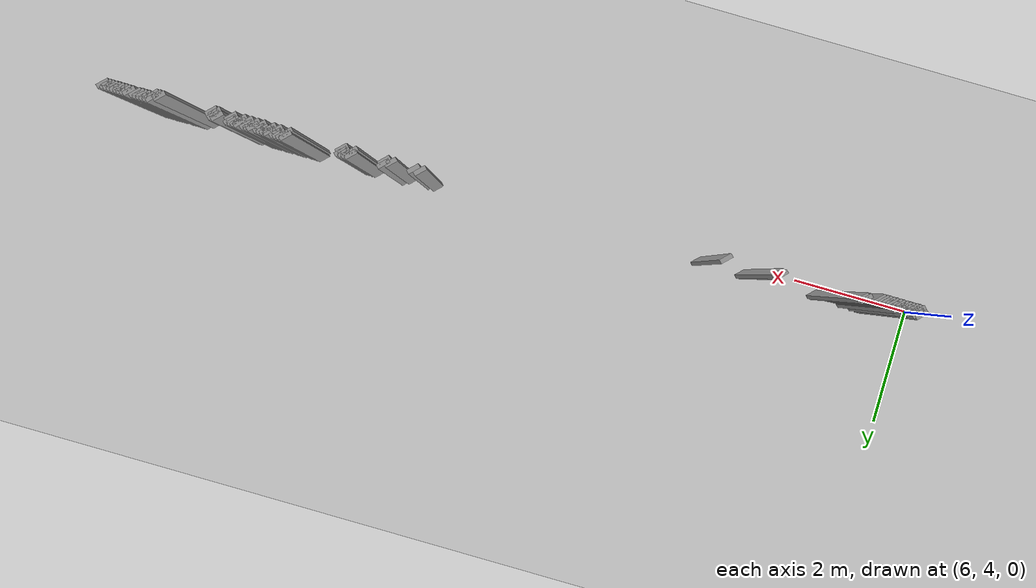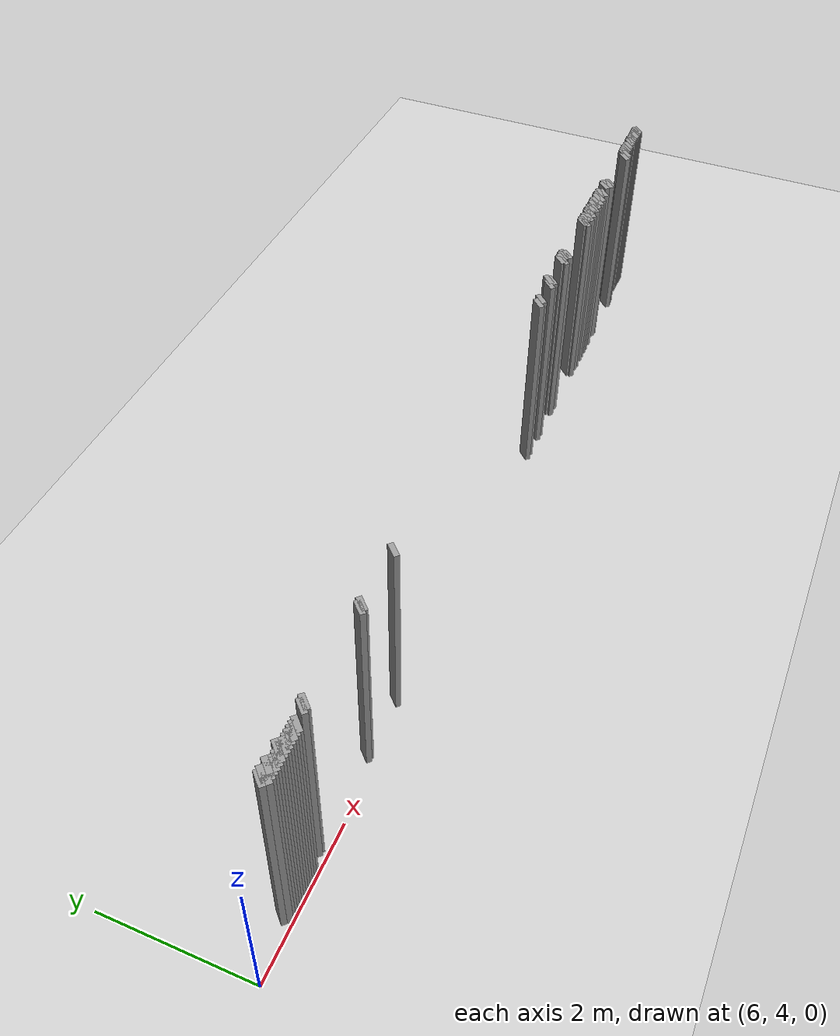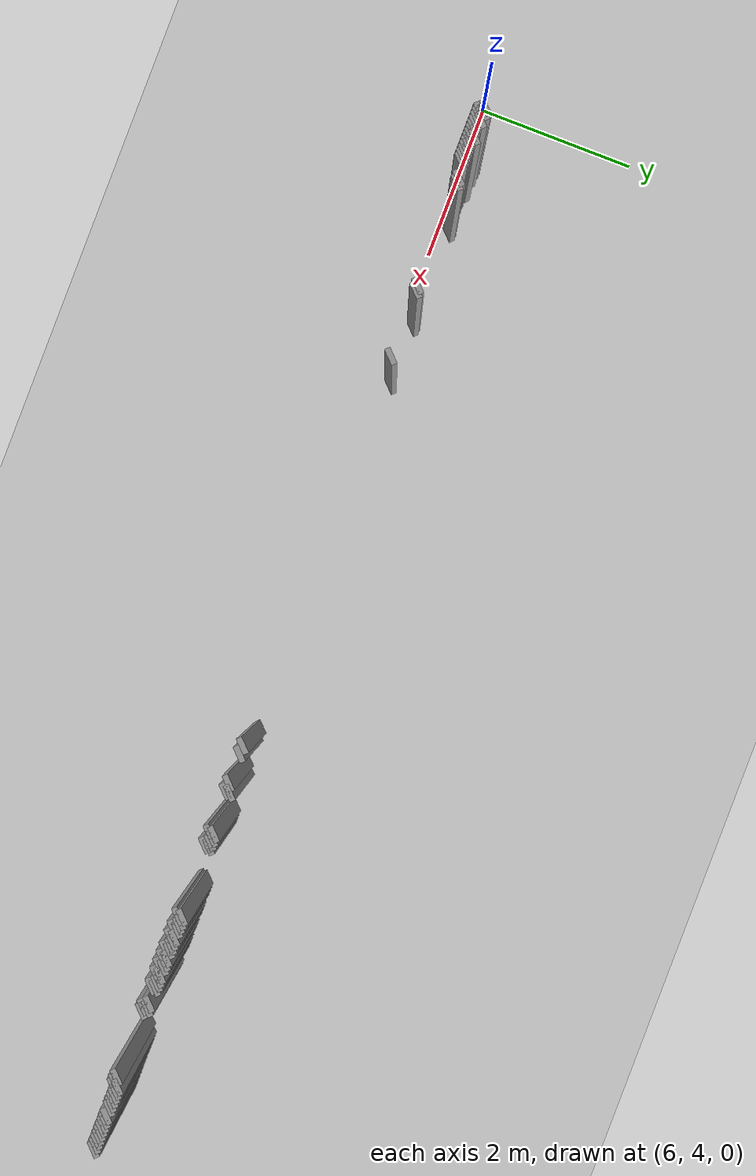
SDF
<sdf version="1.5">
 <world name="default">
  <include><uri>model://ground_plane</uri></include>
  <include><uri>model://sun</uri></include>
  <model name="grey_wall_2411">
   <static>1</static>
   <link name="link">
    <pose>15.0 4.2  1.4 0 0 -0.785398163397</pose>
    <collision name="collision"><geometry><box><size>0.0707106781187 .2  2.8</size></box></geometry></collision>
    <visual name="visual">
     <cast_shadows>0</cast_shadows>
     <geometry><box><size>0.0707106781187 .2  2.8</size></box></geometry>
     <material>
      <script>
       <uri>model://grey_wall/materials/scripts</uri>
       <uri>model://grey_wall/materials/textures</uri>
       <name>vrc/grey_wall</name>
      </script>
     </material>
    </visual>
   </link>
  </model>
  <model name="grey_wall_2412">
   <static>1</static>
   <link name="link">
    <pose>15.5 4.2  1.4 0 0 -0.785398163397</pose>
    <collision name="collision"><geometry><box><size>0.0707106781187 .2  2.8</size></box></geometry></collision>
    <visual name="visual">
     <cast_shadows>0</cast_shadows>
     <geometry><box><size>0.0707106781187 .2  2.8</size></box></geometry>
     <material>
      <script>
       <uri>model://grey_wall/materials/scripts</uri>
       <uri>model://grey_wall/materials/textures</uri>
       <name>vrc/grey_wall</name>
      </script>
     </material>
    </visual>
   </link>
  </model>
  <model name="grey_wall_2413">
   <static>1</static>
   <link name="link">
    <pose>15.55 4.2  1.4 0 0 -0.785398163397</pose>
    <collision name="collision"><geometry><box><size>0.0707106781187 .2  2.8</size></box></geometry></collision>
    <visual name="visual">
     <cast_shadows>0</cast_shadows>
     <geometry><box><size>0.0707106781187 .2  2.8</size></box></geometry>
     <material>
      <script>
       <uri>model://grey_wall/materials/scripts</uri>
       <uri>model://grey_wall/materials/textures</uri>
       <name>vrc/grey_wall</name>
      </script>
     </material>
    </visual>
   </link>
  </model>
  <model name="grey_wall_2414">
   <static>1</static>
   <link name="link">
    <pose>15.6 4.2  1.4 0 0 -0.785398163397</pose>
    <collision name="collision"><geometry><box><size>0.0707106781187 .2  2.8</size></box></geometry></collision>
    <visual name="visual">
     <cast_shadows>0</cast_shadows>
     <geometry><box><size>0.0707106781187 .2  2.8</size></box></geometry>
     <material>
      <script>
       <uri>model://grey_wall/materials/scripts</uri>
       <uri>model://grey_wall/materials/textures</uri>
       <name>vrc/grey_wall</name>
      </script>
     </material>
    </visual>
   </link>
  </model>
  <model name="grey_wall_2415">
   <static>1</static>
   <link name="link">
    <pose>15.65 4.2  1.4 0 0 -0.785398163397</pose>
    <collision name="collision"><geometry><box><size>0.0707106781187 .2  2.8</size></box></geometry></collision>
    <visual name="visual">
     <cast_shadows>0</cast_shadows>
     <geometry><box><size>0.0707106781187 .2  2.8</size></box></geometry>
     <material>
      <script>
       <uri>model://grey_wall/materials/scripts</uri>
       <uri>model://grey_wall/materials/textures</uri>
       <name>vrc/grey_wall</name>
      </script>
     </material>
    </visual>
   </link>
  </model>
  <model name="grey_wall_2416">
   <static>1</static>
   <link name="link">
    <pose>16.5 4.2  1.4 0 0 -0.785398163397</pose>
    <collision name="collision"><geometry><box><size>0.0707106781187 .2  2.8</size></box></geometry></collision>
    <visual name="visual">
     <cast_shadows>0</cast_shadows>
     <geometry><box><size>0.0707106781187 .2  2.8</size></box></geometry>
     <material>
      <script>
       <uri>model://grey_wall/materials/scripts</uri>
       <uri>model://grey_wall/materials/textures</uri>
       <name>vrc/grey_wall</name>
      </script>
     </material>
    </visual>
   </link>
  </model>
  <model name="grey_wall_2417">
   <static>1</static>
   <link name="link">
    <pose>16.55 4.2  1.4 0 0 -0.785398163397</pose>
    <collision name="collision"><geometry><box><size>0.0707106781187 .2  2.8</size></box></geometry></collision>
    <visual name="visual">
     <cast_shadows>0</cast_shadows>
     <geometry><box><size>0.0707106781187 .2  2.8</size></box></geometry>
     <material>
      <script>
       <uri>model://grey_wall/materials/scripts</uri>
       <uri>model://grey_wall/materials/textures</uri>
       <name>vrc/grey_wall</name>
      </script>
     </material>
    </visual>
   </link>
  </model>
  <model name="grey_wall_2418">
   <static>1</static>
   <link name="link">
    <pose>16.6 4.2  1.4 0 0 -0.785398163397</pose>
    <collision name="collision"><geometry><box><size>0.0707106781187 .2  2.8</size></box></geometry></collision>
    <visual name="visual">
     <cast_shadows>0</cast_shadows>
     <geometry><box><size>0.0707106781187 .2  2.8</size></box></geometry>
     <material>
      <script>
       <uri>model://grey_wall/materials/scripts</uri>
       <uri>model://grey_wall/materials/textures</uri>
       <name>vrc/grey_wall</name>
      </script>
     </material>
    </visual>
   </link>
  </model>
  <model name="grey_wall_2419">
   <static>1</static>
   <link name="link">
    <pose>16.65 4.2  1.4 0 0 -0.785398163397</pose>
    <collision name="collision"><geometry><box><size>0.0707106781187 .2  2.8</size></box></geometry></collision>
    <visual name="visual">
     <cast_shadows>0</cast_shadows>
     <geometry><box><size>0.0707106781187 .2  2.8</size></box></geometry>
     <material>
      <script>
       <uri>model://grey_wall/materials/scripts</uri>
       <uri>model://grey_wall/materials/textures</uri>
       <name>vrc/grey_wall</name>
      </script>
     </material>
    </visual>
   </link>
  </model>
  <model name="grey_wall_2420">
   <static>1</static>
   <link name="link">
    <pose>16.75 4.2  1.4 0 0 -0.785398163397</pose>
    <collision name="collision"><geometry><box><size>0.0707106781187 .2  2.8</size></box></geometry></collision>
    <visual name="visual">
     <cast_shadows>0</cast_shadows>
     <geometry><box><size>0.0707106781187 .2  2.8</size></box></geometry>
     <material>
      <script>
       <uri>model://grey_wall/materials/scripts</uri>
       <uri>model://grey_wall/materials/textures</uri>
       <name>vrc/grey_wall</name>
      </script>
     </material>
    </visual>
   </link>
  </model>
  <model name="grey_wall_2421">
   <static>1</static>
   <link name="link">
    <pose>16.8 4.2  1.4 0 0 -0.785398163397</pose>
    <collision name="collision"><geometry><box><size>0.0707106781187 .2  2.8</size></box></geometry></collision>
    <visual name="visual">
     <cast_shadows>0</cast_shadows>
     <geometry><box><size>0.0707106781187 .2  2.8</size></box></geometry>
     <material>
      <script>
       <uri>model://grey_wall/materials/scripts</uri>
       <uri>model://grey_wall/materials/textures</uri>
       <name>vrc/grey_wall</name>
      </script>
     </material>
    </visual>
   </link>
  </model>
  <model name="grey_wall_2422">
   <static>1</static>
   <link name="link">
    <pose>16.85 4.2  1.4 0 0 -0.785398163397</pose>
    <collision name="collision"><geometry><box><size>0.0707106781187 .2  2.8</size></box></geometry></collision>
    <visual name="visual">
     <cast_shadows>0</cast_shadows>
     <geometry><box><size>0.0707106781187 .2  2.8</size></box></geometry>
     <material>
      <script>
       <uri>model://grey_wall/materials/scripts</uri>
       <uri>model://grey_wall/materials/textures</uri>
       <name>vrc/grey_wall</name>
      </script>
     </material>
    </visual>
   </link>
  </model>
  <model name="grey_wall_2423">
   <static>1</static>
   <link name="link">
    <pose>16.9 4.2  1.4 0 0 -0.785398163397</pose>
    <collision name="collision"><geometry><box><size>0.0707106781187 .2  2.8</size></box></geometry></collision>
    <visual name="visual">
     <cast_shadows>0</cast_shadows>
     <geometry><box><size>0.0707106781187 .2  2.8</size></box></geometry>
     <material>
      <script>
       <uri>model://grey_wall/materials/scripts</uri>
       <uri>model://grey_wall/materials/textures</uri>
       <name>vrc/grey_wall</name>
      </script>
     </material>
    </visual>
   </link>
  </model>
  <model name="grey_wall_2424">
   <static>1</static>
   <link name="link">
    <pose>17.0 4.2  1.4 0 0 -0.785398163397</pose>
    <collision name="collision"><geometry><box><size>0.0707106781187 .2  2.8</size></box></geometry></collision>
    <visual name="visual">
     <cast_shadows>0</cast_shadows>
     <geometry><box><size>0.0707106781187 .2  2.8</size></box></geometry>
     <material>
      <script>
       <uri>model://grey_wall/materials/scripts</uri>
       <uri>model://grey_wall/materials/textures</uri>
       <name>vrc/grey_wall</name>
      </script>
     </material>
    </visual>
   </link>
  </model>
  <model name="grey_wall_2425">
   <static>1</static>
   <link name="link">
    <pose>17.05 4.2  1.4 0 0 -0.785398163397</pose>
    <collision name="collision"><geometry><box><size>0.0707106781187 .2  2.8</size></box></geometry></collision>
    <visual name="visual">
     <cast_shadows>0</cast_shadows>
     <geometry><box><size>0.0707106781187 .2  2.8</size></box></geometry>
     <material>
      <script>
       <uri>model://grey_wall/materials/scripts</uri>
       <uri>model://grey_wall/materials/textures</uri>
       <name>vrc/grey_wall</name>
      </script>
     </material>
    </visual>
   </link>
  </model>
  <model name="grey_wall_2426">
   <static>1</static>
   <link name="link">
    <pose>17.1 4.2  1.4 0 0 -0.785398163397</pose>
    <collision name="collision"><geometry><box><size>0.0707106781187 .2  2.8</size></box></geometry></collision>
    <visual name="visual">
     <cast_shadows>0</cast_shadows>
     <geometry><box><size>0.0707106781187 .2  2.8</size></box></geometry>
     <material>
      <script>
       <uri>model://grey_wall/materials/scripts</uri>
       <uri>model://grey_wall/materials/textures</uri>
       <name>vrc/grey_wall</name>
      </script>
     </material>
    </visual>
   </link>
  </model>
  <model name="grey_wall_2427">
   <static>1</static>
   <link name="link">
    <pose>17.2 4.2  1.4 0 0 -0.785398163397</pose>
    <collision name="collision"><geometry><box><size>0.0707106781187 .2  2.8</size></box></geometry></collision>
    <visual name="visual">
     <cast_shadows>0</cast_shadows>
     <geometry><box><size>0.0707106781187 .2  2.8</size></box></geometry>
     <material>
      <script>
       <uri>model://grey_wall/materials/scripts</uri>
       <uri>model://grey_wall/materials/textures</uri>
       <name>vrc/grey_wall</name>
      </script>
     </material>
    </visual>
   </link>
  </model>
  <model name="grey_wall_2428">
   <static>1</static>
   <link name="link">
    <pose>17.25 4.2  1.4 0 0 -0.785398163397</pose>
    <collision name="collision"><geometry><box><size>0.0707106781187 .2  2.8</size></box></geometry></collision>
    <visual name="visual">
     <cast_shadows>0</cast_shadows>
     <geometry><box><size>0.0707106781187 .2  2.8</size></box></geometry>
     <material>
      <script>
       <uri>model://grey_wall/materials/scripts</uri>
       <uri>model://grey_wall/materials/textures</uri>
       <name>vrc/grey_wall</name>
      </script>
     </material>
    </visual>
   </link>
  </model>
  <model name="grey_wall_2429">
   <static>1</static>
   <link name="link">
    <pose>17.3 4.2  1.4 0 0 -0.785398163397</pose>
    <collision name="collision"><geometry><box><size>0.0707106781187 .2  2.8</size></box></geometry></collision>
    <visual name="visual">
     <cast_shadows>0</cast_shadows>
     <geometry><box><size>0.0707106781187 .2  2.8</size></box></geometry>
     <material>
      <script>
       <uri>model://grey_wall/materials/scripts</uri>
       <uri>model://grey_wall/materials/textures</uri>
       <name>vrc/grey_wall</name>
      </script>
     </material>
    </visual>
   </link>
  </model>
  <model name="grey_wall_2430">
   <static>1</static>
   <link name="link">
    <pose>17.35 4.2  1.4 0 0 -0.785398163397</pose>
    <collision name="collision"><geometry><box><size>0.0707106781187 .2  2.8</size></box></geometry></collision>
    <visual name="visual">
     <cast_shadows>0</cast_shadows>
     <geometry><box><size>0.0707106781187 .2  2.8</size></box></geometry>
     <material>
      <script>
       <uri>model://grey_wall/materials/scripts</uri>
       <uri>model://grey_wall/materials/textures</uri>
       <name>vrc/grey_wall</name>
      </script>
     </material>
    </visual>
   </link>
  </model>
  <model name="grey_wall_2431">
   <static>1</static>
   <link name="link">
    <pose>17.55 4.2  1.4 0 0 -0.785398163397</pose>
    <collision name="collision"><geometry><box><size>0.0707106781187 .2  2.8</size></box></geometry></collision>
    <visual name="visual">
     <cast_shadows>0</cast_shadows>
     <geometry><box><size>0.0707106781187 .2  2.8</size></box></geometry>
     <material>
      <script>
       <uri>model://grey_wall/materials/scripts</uri>
       <uri>model://grey_wall/materials/textures</uri>
       <name>vrc/grey_wall</name>
      </script>
     </material>
    </visual>
   </link>
  </model>
  <model name="grey_wall_2432">
   <static>1</static>
   <link name="link">
    <pose>17.6 4.2  1.4 0 0 -0.785398163397</pose>
    <collision name="collision"><geometry><box><size>0.0707106781187 .2  2.8</size></box></geometry></collision>
    <visual name="visual">
     <cast_shadows>0</cast_shadows>
     <geometry><box><size>0.0707106781187 .2  2.8</size></box></geometry>
     <material>
      <script>
       <uri>model://grey_wall/materials/scripts</uri>
       <uri>model://grey_wall/materials/textures</uri>
       <name>vrc/grey_wall</name>
      </script>
     </material>
    </visual>
   </link>
  </model>
  <model name="grey_wall_2433">
   <static>1</static>
   <link name="link">
    <pose>18.55 4.2  1.4 0 0 -0.785398163397</pose>
    <collision name="collision"><geometry><box><size>0.0707106781187 .2  2.8</size></box></geometry></collision>
    <visual name="visual">
     <cast_shadows>0</cast_shadows>
     <geometry><box><size>0.0707106781187 .2  2.8</size></box></geometry>
     <material>
      <script>
       <uri>model://grey_wall/materials/scripts</uri>
       <uri>model://grey_wall/materials/textures</uri>
       <name>vrc/grey_wall</name>
      </script>
     </material>
    </visual>
   </link>
  </model>
  <model name="grey_wall_2434">
   <static>1</static>
   <link name="link">
    <pose>18.6 4.2  1.4 0 0 -0.785398163397</pose>
    <collision name="collision"><geometry><box><size>0.0707106781187 .2  2.8</size></box></geometry></collision>
    <visual name="visual">
     <cast_shadows>0</cast_shadows>
     <geometry><box><size>0.0707106781187 .2  2.8</size></box></geometry>
     <material>
      <script>
       <uri>model://grey_wall/materials/scripts</uri>
       <uri>model://grey_wall/materials/textures</uri>
       <name>vrc/grey_wall</name>
      </script>
     </material>
    </visual>
   </link>
  </model>
  <model name="grey_wall_2435">
   <static>1</static>
   <link name="link">
    <pose>18.65 4.2  1.4 0 0 -0.785398163397</pose>
    <collision name="collision"><geometry><box><size>0.0707106781187 .2  2.8</size></box></geometry></collision>
    <visual name="visual">
     <cast_shadows>0</cast_shadows>
     <geometry><box><size>0.0707106781187 .2  2.8</size></box></geometry>
     <material>
      <script>
       <uri>model://grey_wall/materials/scripts</uri>
       <uri>model://grey_wall/materials/textures</uri>
       <name>vrc/grey_wall</name>
      </script>
     </material>
    </visual>
   </link>
  </model>
  <model name="grey_wall_2436">
   <static>1</static>
   <link name="link">
    <pose>18.7 4.2  1.4 0 0 -0.785398163397</pose>
    <collision name="collision"><geometry><box><size>0.0707106781187 .2  2.8</size></box></geometry></collision>
    <visual name="visual">
     <cast_shadows>0</cast_shadows>
     <geometry><box><size>0.0707106781187 .2  2.8</size></box></geometry>
     <material>
      <script>
       <uri>model://grey_wall/materials/scripts</uri>
       <uri>model://grey_wall/materials/textures</uri>
       <name>vrc/grey_wall</name>
      </script>
     </material>
    </visual>
   </link>
  </model>
  <model name="grey_wall_2437">
   <static>1</static>
   <link name="link">
    <pose>18.75 4.2  1.4 0 0 -0.785398163397</pose>
    <collision name="collision"><geometry><box><size>0.0707106781187 .2  2.8</size></box></geometry></collision>
    <visual name="visual">
     <cast_shadows>0</cast_shadows>
     <geometry><box><size>0.0707106781187 .2  2.8</size></box></geometry>
     <material>
      <script>
       <uri>model://grey_wall/materials/scripts</uri>
       <uri>model://grey_wall/materials/textures</uri>
       <name>vrc/grey_wall</name>
      </script>
     </material>
    </visual>
   </link>
  </model>
  <model name="grey_wall_2438">
   <static>1</static>
   <link name="link">
    <pose>18.8 4.2  1.4 0 0 -0.785398163397</pose>
    <collision name="collision"><geometry><box><size>0.0707106781187 .2  2.8</size></box></geometry></collision>
    <visual name="visual">
     <cast_shadows>0</cast_shadows>
     <geometry><box><size>0.0707106781187 .2  2.8</size></box></geometry>
     <material>
      <script>
       <uri>model://grey_wall/materials/scripts</uri>
       <uri>model://grey_wall/materials/textures</uri>
       <name>vrc/grey_wall</name>
      </script>
     </material>
    </visual>
   </link>
  </model>
  <model name="grey_wall_2439">
   <static>1</static>
   <link name="link">
    <pose>18.9 4.2  1.4 0 0 -0.785398163397</pose>
    <collision name="collision"><geometry><box><size>0.0707106781187 .2  2.8</size></box></geometry></collision>
    <visual name="visual">
     <cast_shadows>0</cast_shadows>
     <geometry><box><size>0.0707106781187 .2  2.8</size></box></geometry>
     <material>
      <script>
       <uri>model://grey_wall/materials/scripts</uri>
       <uri>model://grey_wall/materials/textures</uri>
       <name>vrc/grey_wall</name>
      </script>
     </material>
    </visual>
   </link>
  </model>
  <model name="grey_wall_2440">
   <static>1</static>
   <link name="link">
    <pose>18.95 4.2  1.4 0 0 -0.785398163397</pose>
    <collision name="collision"><geometry><box><size>0.0707106781187 .2  2.8</size></box></geometry></collision>
    <visual name="visual">
     <cast_shadows>0</cast_shadows>
     <geometry><box><size>0.0707106781187 .2  2.8</size></box></geometry>
     <material>
      <script>
       <uri>model://grey_wall/materials/scripts</uri>
       <uri>model://grey_wall/materials/textures</uri>
       <name>vrc/grey_wall</name>
      </script>
     </material>
    </visual>
   </link>
  </model>
  <model name="grey_wall_2441">
   <static>1</static>
   <link name="link">
    <pose>19.0 4.2  1.4 0 0 -0.785398163397</pose>
    <collision name="collision"><geometry><box><size>0.0707106781187 .2  2.8</size></box></geometry></collision>
    <visual name="visual">
     <cast_shadows>0</cast_shadows>
     <geometry><box><size>0.0707106781187 .2  2.8</size></box></geometry>
     <material>
      <script>
       <uri>model://grey_wall/materials/scripts</uri>
       <uri>model://grey_wall/materials/textures</uri>
       <name>vrc/grey_wall</name>
      </script>
     </material>
    </visual>
   </link>
  </model>
  <model name="grey_wall_2442">
   <static>1</static>
   <link name="link">
    <pose>19.05 4.2  1.4 0 0 -0.785398163397</pose>
    <collision name="collision"><geometry><box><size>0.0707106781187 .2  2.8</size></box></geometry></collision>
    <visual name="visual">
     <cast_shadows>0</cast_shadows>
     <geometry><box><size>0.0707106781187 .2  2.8</size></box></geometry>
     <material>
      <script>
       <uri>model://grey_wall/materials/scripts</uri>
       <uri>model://grey_wall/materials/textures</uri>
       <name>vrc/grey_wall</name>
      </script>
     </material>
    </visual>
   </link>
  </model>
  <model name="grey_wall_2443">
   <static>1</static>
   <link name="link">
    <pose>19.1 4.2  1.4 0 0 -0.785398163397</pose>
    <collision name="collision"><geometry><box><size>0.0707106781187 .2  2.8</size></box></geometry></collision>
    <visual name="visual">
     <cast_shadows>0</cast_shadows>
     <geometry><box><size>0.0707106781187 .2  2.8</size></box></geometry>
     <material>
      <script>
       <uri>model://grey_wall/materials/scripts</uri>
       <uri>model://grey_wall/materials/textures</uri>
       <name>vrc/grey_wall</name>
      </script>
     </material>
    </visual>
   </link>
  </model>
  <model name="grey_wall_2444">
   <static>1</static>
   <link name="link">
    <pose>19.15 4.2  1.4 0 0 -0.785398163397</pose>
    <collision name="collision"><geometry><box><size>0.0707106781187 .2  2.8</size></box></geometry></collision>
    <visual name="visual">
     <cast_shadows>0</cast_shadows>
     <geometry><box><size>0.0707106781187 .2  2.8</size></box></geometry>
     <material>
      <script>
       <uri>model://grey_wall/materials/scripts</uri>
       <uri>model://grey_wall/materials/textures</uri>
       <name>vrc/grey_wall</name>
      </script>
     </material>
    </visual>
   </link>
  </model>
  <model name="grey_wall_2445">
   <static>1</static>
   <link name="link">
    <pose>19.2 4.2  1.4 0 0 -0.785398163397</pose>
    <collision name="collision"><geometry><box><size>0.0707106781187 .2  2.8</size></box></geometry></collision>
    <visual name="visual">
     <cast_shadows>0</cast_shadows>
     <geometry><box><size>0.0707106781187 .2  2.8</size></box></geometry>
     <material>
      <script>
       <uri>model://grey_wall/materials/scripts</uri>
       <uri>model://grey_wall/materials/textures</uri>
       <name>vrc/grey_wall</name>
      </script>
     </material>
    </visual>
   </link>
  </model>
  <model name="grey_wall_2446">
   <static>1</static>
   <link name="link">
    <pose>19.25 4.2  1.4 0 0 -0.785398163397</pose>
    <collision name="collision"><geometry><box><size>0.0707106781187 .2  2.8</size></box></geometry></collision>
    <visual name="visual">
     <cast_shadows>0</cast_shadows>
     <geometry><box><size>0.0707106781187 .2  2.8</size></box></geometry>
     <material>
      <script>
       <uri>model://grey_wall/materials/scripts</uri>
       <uri>model://grey_wall/materials/textures</uri>
       <name>vrc/grey_wall</name>
      </script>
     </material>
    </visual>
   </link>
  </model>
  <model name="grey_wall_2447">
   <static>1</static>
   <link name="link">
    <pose>19.3 4.2  1.4 0 0 -0.785398163397</pose>
    <collision name="collision"><geometry><box><size>0.0707106781187 .2  2.8</size></box></geometry></collision>
    <visual name="visual">
     <cast_shadows>0</cast_shadows>
     <geometry><box><size>0.0707106781187 .2  2.8</size></box></geometry>
     <material>
      <script>
       <uri>model://grey_wall/materials/scripts</uri>
       <uri>model://grey_wall/materials/textures</uri>
       <name>vrc/grey_wall</name>
      </script>
     </material>
    </visual>
   </link>
  </model>
  <model name="grey_wall_2448">
   <static>1</static>
   <link name="link">
    <pose>6.75 4.15  1.4 0 0 -0.785398163397</pose>
    <collision name="collision"><geometry><box><size>0.0707106781187 .2  2.8</size></box></geometry></collision>
    <visual name="visual">
     <cast_shadows>0</cast_shadows>
     <geometry><box><size>0.0707106781187 .2  2.8</size></box></geometry>
     <material>
      <script>
       <uri>model://grey_wall/materials/scripts</uri>
       <uri>model://grey_wall/materials/textures</uri>
       <name>vrc/grey_wall</name>
      </script>
     </material>
    </visual>
   </link>
  </model>
  <model name="grey_wall_2449">
   <static>1</static>
   <link name="link">
    <pose>6.8 4.15  1.4 0 0 -0.785398163397</pose>
    <collision name="collision"><geometry><box><size>0.0707106781187 .2  2.8</size></box></geometry></collision>
    <visual name="visual">
     <cast_shadows>0</cast_shadows>
     <geometry><box><size>0.0707106781187 .2  2.8</size></box></geometry>
     <material>
      <script>
       <uri>model://grey_wall/materials/scripts</uri>
       <uri>model://grey_wall/materials/textures</uri>
       <name>vrc/grey_wall</name>
      </script>
     </material>
    </visual>
   </link>
  </model>
  <model name="grey_wall_2450">
   <static>1</static>
   <link name="link">
    <pose>6.9 4.15  1.4 0 0 -0.785398163397</pose>
    <collision name="collision"><geometry><box><size>0.0707106781187 .2  2.8</size></box></geometry></collision>
    <visual name="visual">
     <cast_shadows>0</cast_shadows>
     <geometry><box><size>0.0707106781187 .2  2.8</size></box></geometry>
     <material>
      <script>
       <uri>model://grey_wall/materials/scripts</uri>
       <uri>model://grey_wall/materials/textures</uri>
       <name>vrc/grey_wall</name>
      </script>
     </material>
    </visual>
   </link>
  </model>
  <model name="grey_wall_2451">
   <static>1</static>
   <link name="link">
    <pose>7.1 4.15  1.4 0 0 -0.785398163397</pose>
    <collision name="collision"><geometry><box><size>0.0707106781187 .2  2.8</size></box></geometry></collision>
    <visual name="visual">
     <cast_shadows>0</cast_shadows>
     <geometry><box><size>0.0707106781187 .2  2.8</size></box></geometry>
     <material>
      <script>
       <uri>model://grey_wall/materials/scripts</uri>
       <uri>model://grey_wall/materials/textures</uri>
       <name>vrc/grey_wall</name>
      </script>
     </material>
    </visual>
   </link>
  </model>
  <model name="grey_wall_2452">
   <static>1</static>
   <link name="link">
    <pose>7.6 4.15  1.4 0 0 -0.785398163397</pose>
    <collision name="collision"><geometry><box><size>0.0707106781187 .2  2.8</size></box></geometry></collision>
    <visual name="visual">
     <cast_shadows>0</cast_shadows>
     <geometry><box><size>0.0707106781187 .2  2.8</size></box></geometry>
     <material>
      <script>
       <uri>model://grey_wall/materials/scripts</uri>
       <uri>model://grey_wall/materials/textures</uri>
       <name>vrc/grey_wall</name>
      </script>
     </material>
    </visual>
   </link>
  </model>
  <model name="grey_wall_2453">
   <static>1</static>
   <link name="link">
    <pose>7.65 4.15  1.4 0 0 -0.785398163397</pose>
    <collision name="collision"><geometry><box><size>0.0707106781187 .2  2.8</size></box></geometry></collision>
    <visual name="visual">
     <cast_shadows>0</cast_shadows>
     <geometry><box><size>0.0707106781187 .2  2.8</size></box></geometry>
     <material>
      <script>
       <uri>model://grey_wall/materials/scripts</uri>
       <uri>model://grey_wall/materials/textures</uri>
       <name>vrc/grey_wall</name>
      </script>
     </material>
    </visual>
   </link>
  </model>
  <model name="grey_wall_2454">
   <static>1</static>
   <link name="link">
    <pose>8.9 4.15  1.4 0 0 -0.785398163397</pose>
    <collision name="collision"><geometry><box><size>0.0707106781187 .2  2.8</size></box></geometry></collision>
    <visual name="visual">
     <cast_shadows>0</cast_shadows>
     <geometry><box><size>0.0707106781187 .2  2.8</size></box></geometry>
     <material>
      <script>
       <uri>model://grey_wall/materials/scripts</uri>
       <uri>model://grey_wall/materials/textures</uri>
       <name>vrc/grey_wall</name>
      </script>
     </material>
    </visual>
   </link>
  </model>
  <model name="grey_wall_2455">
   <static>1</static>
   <link name="link">
    <pose>8.95 4.15  1.4 0 0 -0.785398163397</pose>
    <collision name="collision"><geometry><box><size>0.0707106781187 .2  2.8</size></box></geometry></collision>
    <visual name="visual">
     <cast_shadows>0</cast_shadows>
     <geometry><box><size>0.0707106781187 .2  2.8</size></box></geometry>
     <material>
      <script>
       <uri>model://grey_wall/materials/scripts</uri>
       <uri>model://grey_wall/materials/textures</uri>
       <name>vrc/grey_wall</name>
      </script>
     </material>
    </visual>
   </link>
  </model>
  <model name="grey_wall_2456">
   <static>1</static>
   <link name="link">
    <pose>9.75 4.15  1.4 0 0 -0.785398163397</pose>
    <collision name="collision"><geometry><box><size>0.0707106781187 .2  2.8</size></box></geometry></collision>
    <visual name="visual">
     <cast_shadows>0</cast_shadows>
     <geometry><box><size>0.0707106781187 .2  2.8</size></box></geometry>
     <material>
      <script>
       <uri>model://grey_wall/materials/scripts</uri>
       <uri>model://grey_wall/materials/textures</uri>
       <name>vrc/grey_wall</name>
      </script>
     </material>
    </visual>
   </link>
  </model>
  <model name="grey_wall_2457">
   <static>1</static>
   <link name="link">
    <pose>14.45 4.15  1.4 0 0 -0.785398163397</pose>
    <collision name="collision"><geometry><box><size>0.0707106781187 .2  2.8</size></box></geometry></collision>
    <visual name="visual">
     <cast_shadows>0</cast_shadows>
     <geometry><box><size>0.0707106781187 .2  2.8</size></box></geometry>
     <material>
      <script>
       <uri>model://grey_wall/materials/scripts</uri>
       <uri>model://grey_wall/materials/textures</uri>
       <name>vrc/grey_wall</name>
      </script>
     </material>
    </visual>
   </link>
  </model>
  <model name="grey_wall_2458">
   <static>1</static>
   <link name="link">
    <pose>14.55 4.15  1.4 0 0 -0.785398163397</pose>
    <collision name="collision"><geometry><box><size>0.0707106781187 .2  2.8</size></box></geometry></collision>
    <visual name="visual">
     <cast_shadows>0</cast_shadows>
     <geometry><box><size>0.0707106781187 .2  2.8</size></box></geometry>
     <material>
      <script>
       <uri>model://grey_wall/materials/scripts</uri>
       <uri>model://grey_wall/materials/textures</uri>
       <name>vrc/grey_wall</name>
      </script>
     </material>
    </visual>
   </link>
  </model>
  <model name="grey_wall_2459">
   <static>1</static>
   <link name="link">
    <pose>14.9 4.15  1.4 0 0 -0.785398163397</pose>
    <collision name="collision"><geometry><box><size>0.0707106781187 .2  2.8</size></box></geometry></collision>
    <visual name="visual">
     <cast_shadows>0</cast_shadows>
     <geometry><box><size>0.0707106781187 .2  2.8</size></box></geometry>
     <material>
      <script>
       <uri>model://grey_wall/materials/scripts</uri>
       <uri>model://grey_wall/materials/textures</uri>
       <name>vrc/grey_wall</name>
      </script>
     </material>
    </visual>
   </link>
  </model>
  <model name="grey_wall_2460">
   <static>1</static>
   <link name="link">
    <pose>15.0 4.15  1.4 0 0 -0.785398163397</pose>
    <collision name="collision"><geometry><box><size>0.0707106781187 .2  2.8</size></box></geometry></collision>
    <visual name="visual">
     <cast_shadows>0</cast_shadows>
     <geometry><box><size>0.0707106781187 .2  2.8</size></box></geometry>
     <material>
      <script>
       <uri>model://grey_wall/materials/scripts</uri>
       <uri>model://grey_wall/materials/textures</uri>
       <name>vrc/grey_wall</name>
      </script>
     </material>
    </visual>
   </link>
  </model>
  <model name="grey_wall_2461">
   <static>1</static>
   <link name="link">
    <pose>15.5 4.15  1.4 0 0 -0.785398163397</pose>
    <collision name="collision"><geometry><box><size>0.0707106781187 .2  2.8</size></box></geometry></collision>
    <visual name="visual">
     <cast_shadows>0</cast_shadows>
     <geometry><box><size>0.0707106781187 .2  2.8</size></box></geometry>
     <material>
      <script>
       <uri>model://grey_wall/materials/scripts</uri>
       <uri>model://grey_wall/materials/textures</uri>
       <name>vrc/grey_wall</name>
      </script>
     </material>
    </visual>
   </link>
  </model>
  <model name="grey_wall_2462">
   <static>1</static>
   <link name="link">
    <pose>15.65 4.15  1.4 0 0 -0.785398163397</pose>
    <collision name="collision"><geometry><box><size>0.0707106781187 .2  2.8</size></box></geometry></collision>
    <visual name="visual">
     <cast_shadows>0</cast_shadows>
     <geometry><box><size>0.0707106781187 .2  2.8</size></box></geometry>
     <material>
      <script>
       <uri>model://grey_wall/materials/scripts</uri>
       <uri>model://grey_wall/materials/textures</uri>
       <name>vrc/grey_wall</name>
      </script>
     </material>
    </visual>
   </link>
  </model>
  <model name="grey_wall_2463">
   <static>1</static>
   <link name="link">
    <pose>16.5 4.15  1.4 0 0 -0.785398163397</pose>
    <collision name="collision"><geometry><box><size>0.0707106781187 .2  2.8</size></box></geometry></collision>
    <visual name="visual">
     <cast_shadows>0</cast_shadows>
     <geometry><box><size>0.0707106781187 .2  2.8</size></box></geometry>
     <material>
      <script>
       <uri>model://grey_wall/materials/scripts</uri>
       <uri>model://grey_wall/materials/textures</uri>
       <name>vrc/grey_wall</name>
      </script>
     </material>
    </visual>
   </link>
  </model>
  <model name="grey_wall_2464">
   <static>1</static>
   <link name="link">
    <pose>16.65 4.15  1.4 0 0 -0.785398163397</pose>
    <collision name="collision"><geometry><box><size>0.0707106781187 .2  2.8</size></box></geometry></collision>
    <visual name="visual">
     <cast_shadows>0</cast_shadows>
     <geometry><box><size>0.0707106781187 .2  2.8</size></box></geometry>
     <material>
      <script>
       <uri>model://grey_wall/materials/scripts</uri>
       <uri>model://grey_wall/materials/textures</uri>
       <name>vrc/grey_wall</name>
      </script>
     </material>
    </visual>
   </link>
  </model>
  <model name="grey_wall_2465">
   <static>1</static>
   <link name="link">
    <pose>16.75 4.15  1.4 0 0 -0.785398163397</pose>
    <collision name="collision"><geometry><box><size>0.0707106781187 .2  2.8</size></box></geometry></collision>
    <visual name="visual">
     <cast_shadows>0</cast_shadows>
     <geometry><box><size>0.0707106781187 .2  2.8</size></box></geometry>
     <material>
      <script>
       <uri>model://grey_wall/materials/scripts</uri>
       <uri>model://grey_wall/materials/textures</uri>
       <name>vrc/grey_wall</name>
      </script>
     </material>
    </visual>
   </link>
  </model>
  <model name="grey_wall_2466">
   <static>1</static>
   <link name="link">
    <pose>16.9 4.15  1.4 0 0 -0.785398163397</pose>
    <collision name="collision"><geometry><box><size>0.0707106781187 .2  2.8</size></box></geometry></collision>
    <visual name="visual">
     <cast_shadows>0</cast_shadows>
     <geometry><box><size>0.0707106781187 .2  2.8</size></box></geometry>
     <material>
      <script>
       <uri>model://grey_wall/materials/scripts</uri>
       <uri>model://grey_wall/materials/textures</uri>
       <name>vrc/grey_wall</name>
      </script>
     </material>
    </visual>
   </link>
  </model>
  <model name="grey_wall_2467">
   <static>1</static>
   <link name="link">
    <pose>17.0 4.15  1.4 0 0 -0.785398163397</pose>
    <collision name="collision"><geometry><box><size>0.0707106781187 .2  2.8</size></box></geometry></collision>
    <visual name="visual">
     <cast_shadows>0</cast_shadows>
     <geometry><box><size>0.0707106781187 .2  2.8</size></box></geometry>
     <material>
      <script>
       <uri>model://grey_wall/materials/scripts</uri>
       <uri>model://grey_wall/materials/textures</uri>
       <name>vrc/grey_wall</name>
      </script>
     </material>
    </visual>
   </link>
  </model>
  <model name="grey_wall_2468">
   <static>1</static>
   <link name="link">
    <pose>17.1 4.15  1.4 0 0 -0.785398163397</pose>
    <collision name="collision"><geometry><box><size>0.0707106781187 .2  2.8</size></box></geometry></collision>
    <visual name="visual">
     <cast_shadows>0</cast_shadows>
     <geometry><box><size>0.0707106781187 .2  2.8</size></box></geometry>
     <material>
      <script>
       <uri>model://grey_wall/materials/scripts</uri>
       <uri>model://grey_wall/materials/textures</uri>
       <name>vrc/grey_wall</name>
      </script>
     </material>
    </visual>
   </link>
  </model>
  <model name="grey_wall_2469">
   <static>1</static>
   <link name="link">
    <pose>17.2 4.15  1.4 0 0 -0.785398163397</pose>
    <collision name="collision"><geometry><box><size>0.0707106781187 .2  2.8</size></box></geometry></collision>
    <visual name="visual">
     <cast_shadows>0</cast_shadows>
     <geometry><box><size>0.0707106781187 .2  2.8</size></box></geometry>
     <material>
      <script>
       <uri>model://grey_wall/materials/scripts</uri>
       <uri>model://grey_wall/materials/textures</uri>
       <name>vrc/grey_wall</name>
      </script>
     </material>
    </visual>
   </link>
  </model>
  <model name="grey_wall_2470">
   <static>1</static>
   <link name="link">
    <pose>17.35 4.15  1.4 0 0 -0.785398163397</pose>
    <collision name="collision"><geometry><box><size>0.0707106781187 .2  2.8</size></box></geometry></collision>
    <visual name="visual">
     <cast_shadows>0</cast_shadows>
     <geometry><box><size>0.0707106781187 .2  2.8</size></box></geometry>
     <material>
      <script>
       <uri>model://grey_wall/materials/scripts</uri>
       <uri>model://grey_wall/materials/textures</uri>
       <name>vrc/grey_wall</name>
      </script>
     </material>
    </visual>
   </link>
  </model>
  <model name="grey_wall_2471">
   <static>1</static>
   <link name="link">
    <pose>17.6 4.15  1.4 0 0 -0.785398163397</pose>
    <collision name="collision"><geometry><box><size>0.0707106781187 .2  2.8</size></box></geometry></collision>
    <visual name="visual">
     <cast_shadows>0</cast_shadows>
     <geometry><box><size>0.0707106781187 .2  2.8</size></box></geometry>
     <material>
      <script>
       <uri>model://grey_wall/materials/scripts</uri>
       <uri>model://grey_wall/materials/textures</uri>
       <name>vrc/grey_wall</name>
      </script>
     </material>
    </visual>
   </link>
  </model>
  <model name="grey_wall_2472">
   <static>1</static>
   <link name="link">
    <pose>17.65 4.15  1.4 0 0 -0.785398163397</pose>
    <collision name="collision"><geometry><box><size>0.0707106781187 .2  2.8</size></box></geometry></collision>
    <visual name="visual">
     <cast_shadows>0</cast_shadows>
     <geometry><box><size>0.0707106781187 .2  2.8</size></box></geometry>
     <material>
      <script>
       <uri>model://grey_wall/materials/scripts</uri>
       <uri>model://grey_wall/materials/textures</uri>
       <name>vrc/grey_wall</name>
      </script>
     </material>
    </visual>
   </link>
  </model>
  <model name="grey_wall_2473">
   <static>1</static>
   <link name="link">
    <pose>18.45 4.15  1.4 0 0 -0.785398163397</pose>
    <collision name="collision"><geometry><box><size>0.0707106781187 .2  2.8</size></box></geometry></collision>
    <visual name="visual">
     <cast_shadows>0</cast_shadows>
     <geometry><box><size>0.0707106781187 .2  2.8</size></box></geometry>
     <material>
      <script>
       <uri>model://grey_wall/materials/scripts</uri>
       <uri>model://grey_wall/materials/textures</uri>
       <name>vrc/grey_wall</name>
      </script>
     </material>
    </visual>
   </link>
  </model>
  <model name="grey_wall_2474">
   <static>1</static>
   <link name="link">
    <pose>18.5 4.15  1.4 0 0 -0.785398163397</pose>
    <collision name="collision"><geometry><box><size>0.0707106781187 .2  2.8</size></box></geometry></collision>
    <visual name="visual">
     <cast_shadows>0</cast_shadows>
     <geometry><box><size>0.0707106781187 .2  2.8</size></box></geometry>
     <material>
      <script>
       <uri>model://grey_wall/materials/scripts</uri>
       <uri>model://grey_wall/materials/textures</uri>
       <name>vrc/grey_wall</name>
      </script>
     </material>
    </visual>
   </link>
  </model>
  <model name="grey_wall_2475">
   <static>1</static>
   <link name="link">
    <pose>18.55 4.15  1.4 0 0 -0.785398163397</pose>
    <collision name="collision"><geometry><box><size>0.0707106781187 .2  2.8</size></box></geometry></collision>
    <visual name="visual">
     <cast_shadows>0</cast_shadows>
     <geometry><box><size>0.0707106781187 .2  2.8</size></box></geometry>
     <material>
      <script>
       <uri>model://grey_wall/materials/scripts</uri>
       <uri>model://grey_wall/materials/textures</uri>
       <name>vrc/grey_wall</name>
      </script>
     </material>
    </visual>
   </link>
  </model>
  <model name="grey_wall_2476">
   <static>1</static>
   <link name="link">
    <pose>6.8 4.1  1.4 0 0 -0.785398163397</pose>
    <collision name="collision"><geometry><box><size>0.0707106781187 .2  2.8</size></box></geometry></collision>
    <visual name="visual">
     <cast_shadows>0</cast_shadows>
     <geometry><box><size>0.0707106781187 .2  2.8</size></box></geometry>
     <material>
      <script>
       <uri>model://grey_wall/materials/scripts</uri>
       <uri>model://grey_wall/materials/textures</uri>
       <name>vrc/grey_wall</name>
      </script>
     </material>
    </visual>
   </link>
  </model>
  <model name="grey_wall_2477">
   <static>1</static>
   <link name="link">
    <pose>6.85 4.1  1.4 0 0 -0.785398163397</pose>
    <collision name="collision"><geometry><box><size>0.0707106781187 .2  2.8</size></box></geometry></collision>
    <visual name="visual">
     <cast_shadows>0</cast_shadows>
     <geometry><box><size>0.0707106781187 .2  2.8</size></box></geometry>
     <material>
      <script>
       <uri>model://grey_wall/materials/scripts</uri>
       <uri>model://grey_wall/materials/textures</uri>
       <name>vrc/grey_wall</name>
      </script>
     </material>
    </visual>
   </link>
  </model>
  <model name="grey_wall_2478">
   <static>1</static>
   <link name="link">
    <pose>6.9 4.1  1.4 0 0 -0.785398163397</pose>
    <collision name="collision"><geometry><box><size>0.0707106781187 .2  2.8</size></box></geometry></collision>
    <visual name="visual">
     <cast_shadows>0</cast_shadows>
     <geometry><box><size>0.0707106781187 .2  2.8</size></box></geometry>
     <material>
      <script>
       <uri>model://grey_wall/materials/scripts</uri>
       <uri>model://grey_wall/materials/textures</uri>
       <name>vrc/grey_wall</name>
      </script>
     </material>
    </visual>
   </link>
  </model>
  <model name="grey_wall_2479">
   <static>1</static>
   <link name="link">
    <pose>6.95 4.1  1.4 0 0 -0.785398163397</pose>
    <collision name="collision"><geometry><box><size>0.0707106781187 .2  2.8</size></box></geometry></collision>
    <visual name="visual">
     <cast_shadows>0</cast_shadows>
     <geometry><box><size>0.0707106781187 .2  2.8</size></box></geometry>
     <material>
      <script>
       <uri>model://grey_wall/materials/scripts</uri>
       <uri>model://grey_wall/materials/textures</uri>
       <name>vrc/grey_wall</name>
      </script>
     </material>
    </visual>
   </link>
  </model>
  <model name="grey_wall_2480">
   <static>1</static>
   <link name="link">
    <pose>7.0 4.1  1.4 0 0 -0.785398163397</pose>
    <collision name="collision"><geometry><box><size>0.0707106781187 .2  2.8</size></box></geometry></collision>
    <visual name="visual">
     <cast_shadows>0</cast_shadows>
     <geometry><box><size>0.0707106781187 .2  2.8</size></box></geometry>
     <material>
      <script>
       <uri>model://grey_wall/materials/scripts</uri>
       <uri>model://grey_wall/materials/textures</uri>
       <name>vrc/grey_wall</name>
      </script>
     </material>
    </visual>
   </link>
  </model>
  <model name="grey_wall_2481">
   <static>1</static>
   <link name="link">
    <pose>7.05 4.1  1.4 0 0 -0.785398163397</pose>
    <collision name="collision"><geometry><box><size>0.0707106781187 .2  2.8</size></box></geometry></collision>
    <visual name="visual">
     <cast_shadows>0</cast_shadows>
     <geometry><box><size>0.0707106781187 .2  2.8</size></box></geometry>
     <material>
      <script>
       <uri>model://grey_wall/materials/scripts</uri>
       <uri>model://grey_wall/materials/textures</uri>
       <name>vrc/grey_wall</name>
      </script>
     </material>
    </visual>
   </link>
  </model>
  <model name="grey_wall_2482">
   <static>1</static>
   <link name="link">
    <pose>7.1 4.1  1.4 0 0 -0.785398163397</pose>
    <collision name="collision"><geometry><box><size>0.0707106781187 .2  2.8</size></box></geometry></collision>
    <visual name="visual">
     <cast_shadows>0</cast_shadows>
     <geometry><box><size>0.0707106781187 .2  2.8</size></box></geometry>
     <material>
      <script>
       <uri>model://grey_wall/materials/scripts</uri>
       <uri>model://grey_wall/materials/textures</uri>
       <name>vrc/grey_wall</name>
      </script>
     </material>
    </visual>
   </link>
  </model>
  <model name="grey_wall_2483">
   <static>1</static>
   <link name="link">
    <pose>7.15 4.1  1.4 0 0 -0.785398163397</pose>
    <collision name="collision"><geometry><box><size>0.0707106781187 .2  2.8</size></box></geometry></collision>
    <visual name="visual">
     <cast_shadows>0</cast_shadows>
     <geometry><box><size>0.0707106781187 .2  2.8</size></box></geometry>
     <material>
      <script>
       <uri>model://grey_wall/materials/scripts</uri>
       <uri>model://grey_wall/materials/textures</uri>
       <name>vrc/grey_wall</name>
      </script>
     </material>
    </visual>
   </link>
  </model>
  <model name="grey_wall_2484">
   <static>1</static>
   <link name="link">
    <pose>7.2 4.1  1.4 0 0 -0.785398163397</pose>
    <collision name="collision"><geometry><box><size>0.0707106781187 .2  2.8</size></box></geometry></collision>
    <visual name="visual">
     <cast_shadows>0</cast_shadows>
     <geometry><box><size>0.0707106781187 .2  2.8</size></box></geometry>
     <material>
      <script>
       <uri>model://grey_wall/materials/scripts</uri>
       <uri>model://grey_wall/materials/textures</uri>
       <name>vrc/grey_wall</name>
      </script>
     </material>
    </visual>
   </link>
  </model>
  <model name="grey_wall_2485">
   <static>1</static>
   <link name="link">
    <pose>7.25 4.1  1.4 0 0 -0.785398163397</pose>
    <collision name="collision"><geometry><box><size>0.0707106781187 .2  2.8</size></box></geometry></collision>
    <visual name="visual">
     <cast_shadows>0</cast_shadows>
     <geometry><box><size>0.0707106781187 .2  2.8</size></box></geometry>
     <material>
      <script>
       <uri>model://grey_wall/materials/scripts</uri>
       <uri>model://grey_wall/materials/textures</uri>
       <name>vrc/grey_wall</name>
      </script>
     </material>
    </visual>
   </link>
  </model>
  <model name="grey_wall_2486">
   <static>1</static>
   <link name="link">
    <pose>7.3 4.1  1.4 0 0 -0.785398163397</pose>
    <collision name="collision"><geometry><box><size>0.0707106781187 .2  2.8</size></box></geometry></collision>
    <visual name="visual">
     <cast_shadows>0</cast_shadows>
     <geometry><box><size>0.0707106781187 .2  2.8</size></box></geometry>
     <material>
      <script>
       <uri>model://grey_wall/materials/scripts</uri>
       <uri>model://grey_wall/materials/textures</uri>
       <name>vrc/grey_wall</name>
      </script>
     </material>
    </visual>
   </link>
  </model>
  <model name="grey_wall_2487">
   <static>1</static>
   <link name="link">
    <pose>7.35 4.1  1.4 0 0 -0.785398163397</pose>
    <collision name="collision"><geometry><box><size>0.0707106781187 .2  2.8</size></box></geometry></collision>
    <visual name="visual">
     <cast_shadows>0</cast_shadows>
     <geometry><box><size>0.0707106781187 .2  2.8</size></box></geometry>
     <material>
      <script>
       <uri>model://grey_wall/materials/scripts</uri>
       <uri>model://grey_wall/materials/textures</uri>
       <name>vrc/grey_wall</name>
      </script>
     </material>
    </visual>
   </link>
  </model>
  <model name="grey_wall_2488">
   <static>1</static>
   <link name="link">
    <pose>7.4 4.1  1.4 0 0 -0.785398163397</pose>
    <collision name="collision"><geometry><box><size>0.0707106781187 .2  2.8</size></box></geometry></collision>
    <visual name="visual">
     <cast_shadows>0</cast_shadows>
     <geometry><box><size>0.0707106781187 .2  2.8</size></box></geometry>
     <material>
      <script>
       <uri>model://grey_wall/materials/scripts</uri>
       <uri>model://grey_wall/materials/textures</uri>
       <name>vrc/grey_wall</name>
      </script>
     </material>
    </visual>
   </link>
  </model>
 </world>
</sdf>
